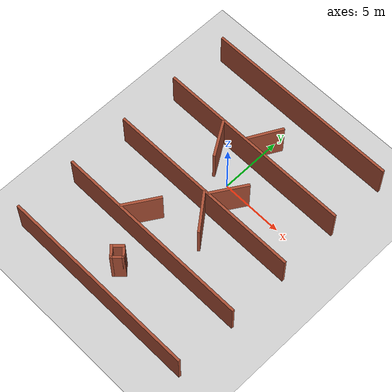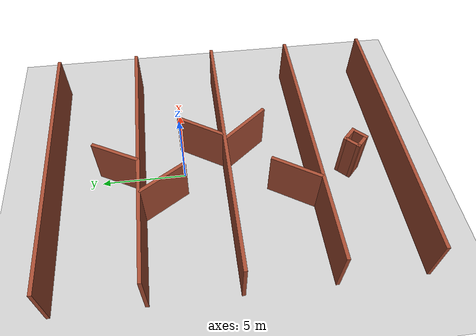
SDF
<sdf version="1.6">
 <world name="default">
  <light name="sun" type="directional">
   <pose>0 0 10 0 -0 0</pose>
   <diffuse>0.8 0.8 0.8 1</diffuse>
   <specular>0.2 0.2 0.2 1</specular>
   <attenuation>
    <range>1000</range>
    <constant>0.9</constant>
    <linear>0.01</linear>
    <quadratic>0.001</quadratic>
   </attenuation>
   <direction>-0.5 0.1 -0.9</direction>
  </light>
  <model name="ground_plane">
   <static>1</static>
   <link name="link">
    <collision name="collision">
     <geometry><plane><normal>0 0 1</normal><size>100 100</size></plane></geometry>
     <surface><friction><ode><mu>100</mu><mu2>50</mu2></ode></friction></surface>
    </collision>
    <visual name="visual">
     <cast_shadows>0</cast_shadows>
     <geometry><plane><normal>0 0 1</normal><size>100 100</size></plane></geometry>
     <material>
      <script><uri>file://media/materials/scripts/gazebo.material</uri><name>Gazebo/Grey</name></script>
     </material>
    </visual>
   </link>
  </model>
  <gravity>0 0 -9.8</gravity>
  <magnetic_field>6e-06 2.3e-05 -4.2e-05</magnetic_field>
  <atmosphere type="adiabatic"/>
  <physics name="default_physics" default="0" type="ode">
   <max_step_size>0.001</max_step_size>
   <real_time_factor>1</real_time_factor>
   <real_time_update_rate>1000</real_time_update_rate>
  </physics>
  <scene><ambient>0.4 0.4 0.4 1</ambient><background>0.7 0.7 0.7 1</background><shadows>1</shadows></scene>
  <audio><device>default</device></audio>
  <spherical_coordinates>
   <surface_model>EARTH_WGS84</surface_model>
   <latitude_deg>0</latitude_deg>
   <longitude_deg>0</longitude_deg>
   <elevation>0</elevation>
   <heading_deg>0</heading_deg>
  </spherical_coordinates>
  <model name="walls">
   <link name="Wall_0">
    <collision name="Wall_0_Collision">
     <geometry><box><size>16 0.2 3</size></box></geometry>
     <pose>0 0 1.5 0 -0 0</pose>
    </collision>
    <visual name="Wall_0_Visual">
     <pose>0 0 1.5 0 -0 0</pose>
     <geometry><box><size>16 0.2 3</size></box></geometry>
     <material>
      <script><uri>file://media/materials/scripts/gazebo.material</uri><name>Gazebo/Bricks</name></script>
      <ambient>1 1 1 1</ambient>
     </material>
     <meta><layer>0</layer></meta>
    </visual>
    <pose>0 -2.5 0 0 -0 0</pose>
   </link>
   <link name="Wall_13">
    <collision name="Wall_13_Collision">
     <geometry><box><size>2.92947 0.2 3</size></box></geometry>
     <pose>0 0 1.5 0 -0 0</pose>
    </collision>
    <visual name="Wall_13_Visual">
     <pose>0 0 1.5 0 -0 0</pose>
     <geometry><box><size>2.92947 0.2 3</size></box></geometry>
     <material>
      <script><uri>file://media/materials/scripts/gazebo.material</uri><name>Gazebo/Bricks</name></script>
      <ambient>1 1 1 1</ambient>
     </material>
     <meta><layer>0</layer></meta>
    </visual>
    <pose>0 3.8 0 0 -0 1.07437</pose>
   </link>
   <link name="Wall_15">
    <collision name="Wall_15_Collision">
     <geometry><box><size>3.03019 0.2 3</size></box></geometry>
     <pose>0 0 1.5 0 -0 0</pose>
    </collision>
    <visual name="Wall_15_Visual">
     <pose>0 0 1.5 0 -0 0</pose>
     <geometry><box><size>3.03019 0.2 3</size></box></geometry>
     <material>
      <script><uri>file://media/materials/scripts/gazebo.material</uri><name>Gazebo/Bricks</name></script>
      <ambient>1 1 1 1</ambient>
     </material>
     <meta><layer>0</layer></meta>
    </visual>
    <pose>-2.05 1.2 0 0 -0 -1.0122</pose>
   </link>
   <link name="Wall_17">
    <collision name="Wall_17_Collision">
     <geometry><box><size>3.03019 0.2 3</size></box></geometry>
     <pose>0 0 1.5 0 -0 0</pose>
    </collision>
    <visual name="Wall_17_Visual">
     <pose>0 0 1.5 0 -0 0</pose>
     <geometry><box><size>3.03019 0.2 3</size></box></geometry>
     <material>
      <script><uri>file://media/materials/scripts/gazebo.material</uri><name>Gazebo/Bricks</name></script>
      <ambient>1 1 1 1</ambient>
     </material>
     <meta><layer>0</layer></meta>
    </visual>
    <pose>1.35 -1.2 0 0 -0 -2.1294</pose>
   </link>
   <link name="Wall_19">
    <collision name="Wall_19_Collision">
     <geometry><box><size>3.26105 0.2 3</size></box></geometry>
     <pose>0 0 1.5 0 -0 0</pose>
    </collision>
    <visual name="Wall_19_Visual">
     <pose>0 0 1.5 0 -0 0</pose>
     <geometry><box><size>3.26105 0.2 3</size></box></geometry>
     <material>
      <script><uri>file://media/materials/scripts/gazebo.material</uri><name>Gazebo/Bricks</name></script>
      <ambient>1 1 1 1</ambient>
     </material>
     <meta><layer>0</layer></meta>
    </visual>
    <pose>1.25 -3.8 0 0 -0 -0.901157</pose>
   </link>
   <link name="Wall_2">
    <collision name="Wall_2_Collision">
     <geometry><box><size>16 0.2 3</size></box></geometry>
     <pose>0 0 1.5 0 -0 0</pose>
    </collision>
    <visual name="Wall_2_Visual">
     <pose>0 0 1.5 0 -0 0</pose>
     <geometry><box><size>16 0.2 3</size></box></geometry>
     <material>
      <script><uri>file://media/materials/scripts/gazebo.material</uri><name>Gazebo/Bricks</name></script>
      <ambient>1 1 1 1</ambient>
     </material>
     <meta><layer>0</layer></meta>
    </visual>
    <pose>0 -7.5 0 0 -0 0</pose>
   </link>
   <link name="Wall_21">
    <collision name="Wall_21_Collision">
     <geometry><box><size>3.03019 0.2 3</size></box></geometry>
     <pose>0 0 1.5 0 -0 0</pose>
    </collision>
    <visual name="Wall_21_Visual">
     <pose>0 0 1.5 0 -0 0</pose>
     <geometry><box><size>3.03019 0.2 3</size></box></geometry>
     <material>
      <script><uri>file://media/materials/scripts/gazebo.material</uri><name>Gazebo/Bricks</name></script>
      <ambient>1 1 1 1</ambient>
     </material>
     <meta><layer>0</layer></meta>
    </visual>
    <pose>-2.25 -6.2 0 0 -0 1.0122</pose>
   </link>
   <link name="Wall_23">
    <collision name="Wall_23_Collision">
     <geometry><box><size>1.04853 0.2 3</size></box></geometry>
     <pose>0 0 1.5 0 -0 0</pose>
    </collision>
    <visual name="Wall_23_Visual">
     <pose>0 0 1.5 0 -0 0</pose>
     <geometry><box><size>1.04853 0.2 3</size></box></geometry>
     <material>
      <script><uri>file://media/materials/scripts/gazebo.material</uri><name>Gazebo/Bricks</name></script>
      <ambient>1 1 1 1</ambient>
     </material>
     <meta><layer>0</layer></meta>
    </visual>
    <pose>-0.3 -9.7 0 0 -0 -0.785398</pose>
   </link>
   <link name="Wall_30">
    <collision name="Wall_30_Collision">
     <geometry><box><size>1.04853 0.2 3</size></box></geometry>
     <pose>0 0 1.5 0 -0 0</pose>
    </collision>
    <visual name="Wall_30_Visual">
     <pose>0 0 1.5 0 -0 0</pose>
     <geometry><box><size>1.04853 0.2 3</size></box></geometry>
     <material>
      <script><uri>file://media/materials/scripts/gazebo.material</uri><name>Gazebo/Bricks</name></script>
      <ambient>1 1 1 1</ambient>
     </material>
     <meta><layer>0</layer></meta>
    </visual>
    <pose>-0.9 -10.3 0 0 -0 -0.785398</pose>
   </link>
   <link name="Wall_32">
    <collision name="Wall_32_Collision">
     <geometry><box><size>1.04853 0.2 3</size></box></geometry>
     <pose>0 0 1.5 0 -0 0</pose>
    </collision>
    <visual name="Wall_32_Visual">
     <pose>0 0 1.5 0 -0 0</pose>
     <geometry><box><size>1.04853 0.2 3</size></box></geometry>
     <material>
      <script><uri>file://media/materials/scripts/gazebo.material</uri><name>Gazebo/Bricks</name></script>
      <ambient>1 1 1 1</ambient>
     </material>
     <meta><layer>0</layer></meta>
    </visual>
    <pose>-0.3 -10.3 0 0 -0 0.785398</pose>
   </link>
   <link name="Wall_34">
    <collision name="Wall_34_Collision">
     <geometry><box><size>1.04853 0.2 3</size></box></geometry>
     <pose>0 0 1.5 0 -0 0</pose>
    </collision>
    <visual name="Wall_34_Visual">
     <pose>0 0 1.5 0 -0 0</pose>
     <geometry><box><size>1.04853 0.2 3</size></box></geometry>
     <material>
      <script><uri>file://media/materials/scripts/gazebo.material</uri><name>Gazebo/Bricks</name></script>
      <ambient>1 1 1 1</ambient>
     </material>
     <meta><layer>0</layer></meta>
    </visual>
    <pose>-0.9 -9.7 0 0 -0 0.785398</pose>
   </link>
   <link name="Wall_4">
    <collision name="Wall_4_Collision">
     <geometry><box><size>16 0.2 3</size></box></geometry>
     <pose>0 0 1.5 0 -0 0</pose>
    </collision>
    <visual name="Wall_4_Visual">
     <pose>0 0 1.5 0 -0 0</pose>
     <geometry><box><size>16 0.2 3</size></box></geometry>
     <material>
      <script><uri>file://media/materials/scripts/gazebo.material</uri><name>Gazebo/Bricks</name></script>
      <ambient>1 1 1 1</ambient>
     </material>
     <meta><layer>0</layer></meta>
    </visual>
    <pose>0 -12.5 0 0 -0 0</pose>
   </link>
   <link name="Wall_6">
    <collision name="Wall_6_Collision">
     <geometry><box><size>16 0.2 3</size></box></geometry>
     <pose>0 0 1.5 0 -0 0</pose>
    </collision>
    <visual name="Wall_6_Visual">
     <pose>0 0 1.5 0 -0 0</pose>
     <geometry><box><size>16 0.2 3</size></box></geometry>
     <material>
      <script><uri>file://media/materials/scripts/gazebo.material</uri><name>Gazebo/Bricks</name></script>
      <ambient>1 1 1 1</ambient>
     </material>
     <meta><layer>0</layer></meta>
    </visual>
    <pose>0 2.5 0 0 -0 0</pose>
   </link>
   <link name="Wall_8">
    <collision name="Wall_8_Collision">
     <geometry><box><size>16 0.2 3</size></box></geometry>
     <pose>0 0 1.5 0 -0 0</pose>
    </collision>
    <visual name="Wall_8_Visual">
     <pose>0 0 1.5 0 -0 0</pose>
     <geometry><box><size>16 0.2 3</size></box></geometry>
     <material>
      <script><uri>file://media/materials/scripts/gazebo.material</uri><name>Gazebo/Bricks</name></script>
      <ambient>1 1 1 1</ambient>
     </material>
     <meta><layer>0</layer></meta>
    </visual>
    <pose>0 7.5 0 0 -0 0</pose>
   </link>
   <static>1</static>
  </model>
 </world>
</sdf>
